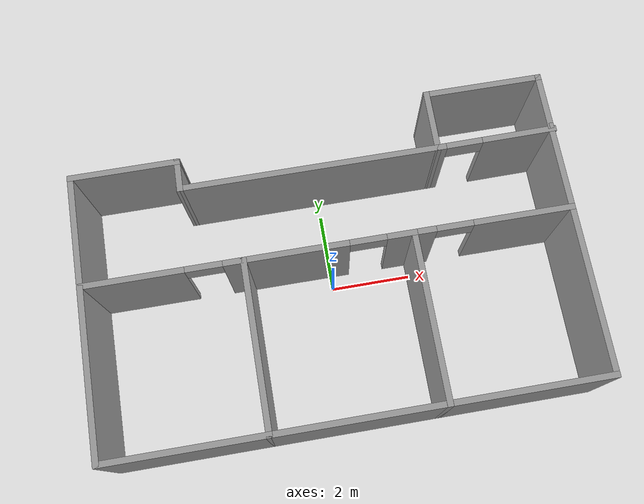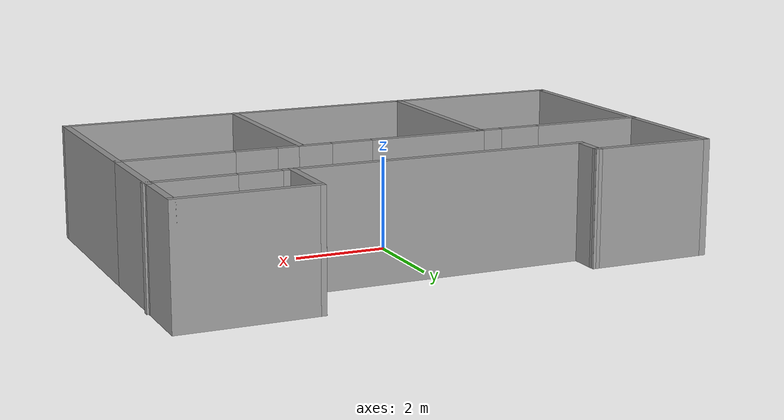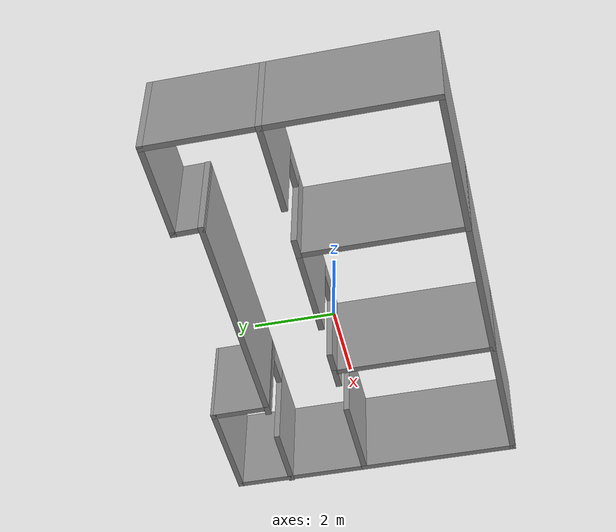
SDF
<?xml version='1.0'?>
<sdf version='1.7'>
  <model name='building'>
    <pose>-0.003614 0.114215 0 0 -0 0</pose>
    <link name='Wall_10'>
      <collision name='Wall_10_Collision'>
        <geometry>
          <box>
            <size>1.60423 0.15 2.5</size>
          </box>
        </geometry>
        <pose>0 0 1.25 0 -0 0</pose>
      </collision>
      <visual name='Wall_10_Visual'>
        <pose>0 0 1.25 0 -0 0</pose>
        <geometry>
          <box>
            <size>1.60423 0.15 2.5</size>
          </box>
        </geometry>
        <material>
          <script>
            <uri>file://media/materials/scripts/gazebo.material</uri>
            <name>Gazebo/Grey</name>
          </script>
          <ambient>1 1 1 1</ambient>
        </material>
        <meta>
          <layer>0</layer>
        </meta>
      </visual>
      <pose>3.02268 3.07278 0 0 -0 1.56289</pose>
    </link>
    <link name='Wall_11'>
      <collision name='Wall_11_Collision'>
        <geometry>
          <box>
            <size>3 0.15 2.5</size>
          </box>
        </geometry>
        <pose>0 0 1.25 0 -0 0</pose>
      </collision>
      <visual name='Wall_11_Visual'>
        <pose>0 0 1.25 0 -0 0</pose>
        <geometry>
          <box>
            <size>3 0.15 2.5</size>
          </box>
        </geometry>
        <material>
          <script>
            <uri>file://media/materials/scripts/gazebo.material</uri>
            <name>Gazebo/Grey</name>
          </script>
          <ambient>1 1 1 1</ambient>
        </material>
        <meta>
          <layer>0</layer>
        </meta>
      </visual>
      <pose>4.45343 3.79953 0 0 -0 0</pose>
    </link>
    <link name='Wall_12'>
      <collision name='Wall_12_Collision'>
        <geometry>
          <box>
            <size>1.5 0.15 2.5</size>
          </box>
        </geometry>
        <pose>0 0 1.25 0 -0 0</pose>
      </collision>
      <visual name='Wall_12_Visual'>
        <pose>0 0 1.25 0 -0 0</pose>
        <geometry>
          <box>
            <size>1.5 0.15 2.5</size>
          </box>
        </geometry>
        <material>
          <script>
            <uri>file://media/materials/scripts/gazebo.material</uri>
            <name>Gazebo/Grey</name>
          </script>
          <ambient>1 1 1 1</ambient>
        </material>
        <meta>
          <layer>0</layer>
        </meta>
      </visual>
      <pose>5.87843 3.12453 0 0 -0 -1.5708</pose>
    </link>
    <link name='Wall_15'>
      <collision name='Wall_15_Collision'>
        <geometry>
          <box>
            <size>4.25 0.15 2.5</size>
          </box>
        </geometry>
        <pose>0 0 1.25 0 -0 0</pose>
      </collision>
      <visual name='Wall_15_Visual'>
        <pose>0 0 1.25 0 -0 0</pose>
        <geometry>
          <box>
            <size>4.25 0.15 2.5</size>
          </box>
        </geometry>
        <material>
          <script>
            <uri>file://media/materials/scripts/gazebo.material</uri>
            <name>Gazebo/Grey</name>
          </script>
          <ambient>1 1 1 1</ambient>
        </material>
        <meta>
          <layer>0</layer>
        </meta>
      </visual>
      <pose>-0.021572 -3.80047 0 0 -0 0</pose>
    </link>
    <link name='Wall_16'>
      <collision name='Wall_16_Collision'>
        <geometry>
          <box>
            <size>4.25 0.15 2.5</size>
          </box>
        </geometry>
        <pose>0 0 1.25 0 -0 0</pose>
      </collision>
      <visual name='Wall_16_Visual'>
        <pose>0 0 1.25 0 -0 0</pose>
        <geometry>
          <box>
            <size>4.25 0.15 2.5</size>
          </box>
        </geometry>
        <material>
          <script>
            <uri>file://media/materials/scripts/gazebo.material</uri>
            <name>Gazebo/Grey</name>
          </script>
          <ambient>1 1 1 1</ambient>
        </material>
        <meta>
          <layer>0</layer>
        </meta>
      </visual>
      <pose>2.02843 -1.75047 0 0 -0 1.5708</pose>
    </link>
    <link name='Wall_17'>
      <pose>3.95343 0.299534 0 0 -0 0</pose>
      <visual name='Wall_17_Visual_0'>
        <pose>-1.69368 0 1.25 0 -0 0</pose>
        <geometry>
          <box>
            <size>0.612639 0.15 2.5</size>
          </box>
        </geometry>
        <material>
          <script>
            <uri>file://media/materials/scripts/gazebo.material</uri>
            <name>Gazebo/Grey</name>
          </script>
          <ambient>1 1 1 1</ambient>
        </material>
        <meta>
          <layer>0</layer>
        </meta>
      </visual>
      <collision name='Wall_17_Collision_0'>
        <geometry>
          <box>
            <size>0.612639 0.15 2.5</size>
          </box>
        </geometry>
        <pose>-1.69368 0 1.25 0 -0 0</pose>
      </collision>
      <visual name='Wall_17_Visual_1'>
        <pose>0.75632 0 1.25 0 -0 0</pose>
        <geometry>
          <box>
            <size>2.48736 0.15 2.5</size>
          </box>
        </geometry>
        <material>
          <script>
            <uri>file://media/materials/scripts/gazebo.material</uri>
            <name>Gazebo/Grey</name>
          </script>
          <ambient>1 1 1 1</ambient>
        </material>
        <meta>
          <layer>0</layer>
        </meta>
      </visual>
      <collision name='Wall_17_Collision_1'>
        <geometry>
          <box>
            <size>2.48736 0.15 2.5</size>
          </box>
        </geometry>
        <pose>0.75632 0 1.25 0 -0 0</pose>
      </collision>
      <visual name='Wall_17_Visual_2'>
        <pose>-0.937361 0 2.25 0 -0 0</pose>
        <geometry>
          <box>
            <size>0.9 0.15 0.5</size>
          </box>
        </geometry>
        <material>
          <script>
            <uri>file://media/materials/scripts/gazebo.material</uri>
            <name>Gazebo/Grey</name>
          </script>
          <ambient>1 1 1 1</ambient>
        </material>
        <meta>
          <layer>0</layer>
        </meta>
      </visual>
      <collision name='Wall_17_Collision_2'>
        <geometry>
          <box>
            <size>0.9 0.15 0.5</size>
          </box>
        </geometry>
        <pose>-0.937361 0 2.25 0 -0 0</pose>
      </collision>
    </link>
    <link name='Wall_18'>
      <collision name='Wall_18_Collision'>
        <geometry>
          <box>
            <size>4.25 0.15 2.5</size>
          </box>
        </geometry>
        <pose>0 0 1.25 0 -0 0</pose>
      </collision>
      <visual name='Wall_18_Visual'>
        <pose>0 0 1.25 0 -0 0</pose>
        <geometry>
          <box>
            <size>4.25 0.15 2.5</size>
          </box>
        </geometry>
        <material>
          <script>
            <uri>file://media/materials/scripts/gazebo.material</uri>
            <name>Gazebo/Grey</name>
          </script>
          <ambient>1 1 1 1</ambient>
        </material>
        <meta>
          <layer>0</layer>
        </meta>
      </visual>
      <pose>5.87843 -1.75047 0 0 -0 -1.5708</pose>
    </link>
    <link name='Wall_19'>
      <collision name='Wall_19_Collision'>
        <geometry>
          <box>
            <size>4 0.15 2.5</size>
          </box>
        </geometry>
        <pose>0 0 1.25 0 -0 0</pose>
      </collision>
      <visual name='Wall_19_Visual'>
        <pose>0 0 1.25 0 -0 0</pose>
        <geometry>
          <box>
            <size>4 0.15 2.5</size>
          </box>
        </geometry>
        <material>
          <script>
            <uri>file://media/materials/scripts/gazebo.material</uri>
            <name>Gazebo/Grey</name>
          </script>
          <ambient>1 1 1 1</ambient>
        </material>
        <meta>
          <layer>0</layer>
        </meta>
      </visual>
      <pose>3.95343 -3.80047 0 0 -0 3.14159</pose>
    </link>
    <link name='Wall_2'>
      <collision name='Wall_2_Collision'>
        <geometry>
          <box>
            <size>7 0.15 2.5</size>
          </box>
        </geometry>
        <pose>0 0 1.25 0 -0 0</pose>
      </collision>
      <visual name='Wall_2_Visual'>
        <pose>0 0 1.25 0 -0 0</pose>
        <geometry>
          <box>
            <size>7 0.15 2.5</size>
          </box>
        </geometry>
        <material>
          <script>
            <uri>file://media/materials/scripts/gazebo.material</uri>
            <name>Gazebo/Grey</name>
          </script>
          <ambient>1 1 1 1</ambient>
        </material>
        <meta>
          <layer>0</layer>
        </meta>
      </visual>
      <pose>-5.92157 -0.375466 0 0 -0 -1.5708</pose>
    </link>
    <link name='Wall_21'>
      <pose>-0.021572 0.299534 0 0 -0 0</pose>
      <visual name='Wall_21_Visual_0'>
        <pose>-0.818084 0 1.25 0 -0 0</pose>
        <geometry>
          <box>
            <size>2.61383 0.15 2.5</size>
          </box>
        </geometry>
        <material>
          <script>
            <uri>file://media/materials/scripts/gazebo.material</uri>
            <name>Gazebo/Grey</name>
          </script>
          <ambient>1 1 1 1</ambient>
        </material>
        <meta>
          <layer>0</layer>
        </meta>
      </visual>
      <collision name='Wall_21_Collision_0'>
        <geometry>
          <box>
            <size>2.61383 0.15 2.5</size>
          </box>
        </geometry>
        <pose>-0.818084 0 1.25 0 -0 0</pose>
      </collision>
      <visual name='Wall_21_Visual_1'>
        <pose>1.75692 0 1.25 0 -0 0</pose>
        <geometry>
          <box>
            <size>0.736168 0.15 2.5</size>
          </box>
        </geometry>
        <material>
          <script>
            <uri>file://media/materials/scripts/gazebo.material</uri>
            <name>Gazebo/Grey</name>
          </script>
          <ambient>1 1 1 1</ambient>
        </material>
        <meta>
          <layer>0</layer>
        </meta>
      </visual>
      <collision name='Wall_21_Collision_1'>
        <geometry>
          <box>
            <size>0.736168 0.15 2.5</size>
          </box>
        </geometry>
        <pose>1.75692 0 1.25 0 -0 0</pose>
      </collision>
      <visual name='Wall_21_Visual_2'>
        <pose>0.938832 0 2.25 0 -0 0</pose>
        <geometry>
          <box>
            <size>0.9 0.15 0.5</size>
          </box>
        </geometry>
        <material>
          <script>
            <uri>file://media/materials/scripts/gazebo.material</uri>
            <name>Gazebo/Grey</name>
          </script>
          <ambient>1 1 1 1</ambient>
        </material>
        <meta>
          <layer>0</layer>
        </meta>
      </visual>
      <collision name='Wall_21_Collision_2'>
        <geometry>
          <box>
            <size>0.9 0.15 0.5</size>
          </box>
        </geometry>
        <pose>0.938832 0 2.25 0 -0 0</pose>
      </collision>
    </link>
    <link name='Wall_23'>
      <collision name='Wall_23_Collision'>
        <geometry>
          <box>
            <size>2.3 0.15 2.5</size>
          </box>
        </geometry>
        <pose>0 0 1.25 0 -0 0</pose>
      </collision>
      <visual name='Wall_23_Visual'>
        <pose>0 0 1.25 0 -0 0</pose>
        <geometry>
          <box>
            <size>2.3 0.15 2.5</size>
          </box>
        </geometry>
        <material>
          <script>
            <uri>file://media/materials/scripts/gazebo.material</uri>
            <name>Gazebo/Grey</name>
          </script>
          <ambient>1 1 1 1</ambient>
        </material>
        <meta>
          <layer>0</layer>
        </meta>
      </visual>
      <pose>5.87843 1.37453 0 0 -0 -1.5708</pose>
    </link>
    <link name='Wall_28'>
      <pose>4.46893 2.35833 0 0 -0 0.00847</pose>
      <visual name='Wall_28_Visual_0'>
        <pose>-1.38024 0 1.25 0 -0 0</pose>
        <geometry>
          <box>
            <size>0.293638 0.15 2.5</size>
          </box>
        </geometry>
        <material>
          <script>
            <uri>file://media/materials/scripts/gazebo.material</uri>
            <name>Gazebo/Grey</name>
          </script>
          <ambient>1 1 1 1</ambient>
        </material>
        <meta>
          <layer>0</layer>
        </meta>
      </visual>
      <collision name='Wall_28_Collision_0'>
        <geometry>
          <box>
            <size>0.293638 0.15 2.5</size>
          </box>
        </geometry>
        <pose>-1.38024 0 1.25 0 -0 0</pose>
      </collision>
      <visual name='Wall_28_Visual_1'>
        <pose>0.596819 0 1.25 0 -0 0</pose>
        <geometry>
          <box>
            <size>1.86048 0.15 2.5</size>
          </box>
        </geometry>
        <material>
          <script>
            <uri>file://media/materials/scripts/gazebo.material</uri>
            <name>Gazebo/Grey</name>
          </script>
          <ambient>1 1 1 1</ambient>
        </material>
        <meta>
          <layer>0</layer>
        </meta>
      </visual>
      <collision name='Wall_28_Collision_1'>
        <geometry>
          <box>
            <size>1.86048 0.15 2.5</size>
          </box>
        </geometry>
        <pose>0.596819 0 1.25 0 -0 0</pose>
      </collision>
      <visual name='Wall_28_Visual_2'>
        <pose>-0.78342 0 2.25 0 -0 0</pose>
        <geometry>
          <box>
            <size>0.9 0.15 0.5</size>
          </box>
        </geometry>
        <material>
          <script>
            <uri>file://media/materials/scripts/gazebo.material</uri>
            <name>Gazebo/Grey</name>
          </script>
          <ambient>1 1 1 1</ambient>
        </material>
        <meta>
          <layer>0</layer>
        </meta>
      </visual>
      <collision name='Wall_28_Collision_2'>
        <geometry>
          <box>
            <size>0.9 0.15 0.5</size>
          </box>
        </geometry>
        <pose>-0.78342 0 2.25 0 -0 0</pose>
      </collision>
    </link>
    <link name='Wall_3'>
      <collision name='Wall_3_Collision'>
        <geometry>
          <box>
            <size>4 0.15 2.5</size>
          </box>
        </geometry>
        <pose>0 0 1.25 0 -0 0</pose>
      </collision>
      <visual name='Wall_3_Visual'>
        <pose>0 0 1.25 0 -0 0</pose>
        <geometry>
          <box>
            <size>4 0.15 2.5</size>
          </box>
        </geometry>
        <material>
          <script>
            <uri>file://media/materials/scripts/gazebo.material</uri>
            <name>Gazebo/Grey</name>
          </script>
          <ambient>1 1 1 1</ambient>
        </material>
        <meta>
          <layer>0</layer>
        </meta>
      </visual>
      <pose>-3.99657 -3.80047 0 0 -0 0</pose>
    </link>
    <link name='Wall_4'>
      <collision name='Wall_4_Collision'>
        <geometry>
          <box>
            <size>4.25 0.15 2.5</size>
          </box>
        </geometry>
        <pose>0 0 1.25 0 -0 0</pose>
      </collision>
      <visual name='Wall_4_Visual'>
        <pose>0 0 1.25 0 -0 0</pose>
        <geometry>
          <box>
            <size>4.25 0.15 2.5</size>
          </box>
        </geometry>
        <material>
          <script>
            <uri>file://media/materials/scripts/gazebo.material</uri>
            <name>Gazebo/Grey</name>
          </script>
          <ambient>1 1 1 1</ambient>
        </material>
        <meta>
          <layer>0</layer>
        </meta>
      </visual>
      <pose>-2.07157 -1.75047 0 0 -0 1.5708</pose>
    </link>
    <link name='Wall_5'>
      <pose>-3.99657 0.299534 0 0 -0 3.14159</pose>
      <visual name='Wall_5_Visual_0'>
        <pose>-1.71238 0 1.25 0 -0 0</pose>
        <geometry>
          <box>
            <size>0.575234 0.15 2.5</size>
          </box>
        </geometry>
        <material>
          <script>
            <uri>file://media/materials/scripts/gazebo.material</uri>
            <name>Gazebo/Grey</name>
          </script>
          <ambient>1 1 1 1</ambient>
        </material>
        <meta>
          <layer>0</layer>
        </meta>
      </visual>
      <collision name='Wall_5_Collision_0'>
        <geometry>
          <box>
            <size>0.575234 0.15 2.5</size>
          </box>
        </geometry>
        <pose>-1.71238 0 1.25 0 -0 0</pose>
      </collision>
      <visual name='Wall_5_Visual_1'>
        <pose>0.737617 0 1.25 0 -0 0</pose>
        <geometry>
          <box>
            <size>2.52477 0.15 2.5</size>
          </box>
        </geometry>
        <material>
          <script>
            <uri>file://media/materials/scripts/gazebo.material</uri>
            <name>Gazebo/Grey</name>
          </script>
          <ambient>1 1 1 1</ambient>
        </material>
        <meta>
          <layer>0</layer>
        </meta>
      </visual>
      <collision name='Wall_5_Collision_1'>
        <geometry>
          <box>
            <size>2.52477 0.15 2.5</size>
          </box>
        </geometry>
        <pose>0.737617 0 1.25 0 -0 0</pose>
      </collision>
      <visual name='Wall_5_Visual_2'>
        <pose>-0.974766 0 2.25 0 -0 0</pose>
        <geometry>
          <box>
            <size>0.9 0.15 0.5</size>
          </box>
        </geometry>
        <material>
          <script>
            <uri>file://media/materials/scripts/gazebo.material</uri>
            <name>Gazebo/Grey</name>
          </script>
          <ambient>1 1 1 1</ambient>
        </material>
        <meta>
          <layer>0</layer>
        </meta>
      </visual>
      <collision name='Wall_5_Collision_2'>
        <geometry>
          <box>
            <size>0.9 0.15 0.5</size>
          </box>
        </geometry>
        <pose>-0.974766 0 2.25 0 -0 0</pose>
      </collision>
    </link>
    <link name='Wall_7'>
      <collision name='Wall_7_Collision'>
        <geometry>
          <box>
            <size>2.75 0.15 2.5</size>
          </box>
        </geometry>
        <pose>0 0 1.25 0 -0 0</pose>
      </collision>
      <visual name='Wall_7_Visual'>
        <pose>0 0 1.25 0 -0 0</pose>
        <geometry>
          <box>
            <size>2.75 0.15 2.5</size>
          </box>
        </geometry>
        <material>
          <script>
            <uri>file://media/materials/scripts/gazebo.material</uri>
            <name>Gazebo/Grey</name>
          </script>
          <ambient>1 1 1 1</ambient>
        </material>
        <meta>
          <layer>0</layer>
        </meta>
      </visual>
      <pose>-4.62157 3.04953 0 0 -0 0</pose>
    </link>
    <link name='Wall_8'>
      <collision name='Wall_8_Collision'>
        <geometry>
          <box>
            <size>0.853876 0.15 2.5</size>
          </box>
        </geometry>
        <pose>0 0 1.25 0 -0 0</pose>
      </collision>
      <visual name='Wall_8_Visual'>
        <pose>0 0 1.25 0 -0 0</pose>
        <geometry>
          <box>
            <size>0.853876 0.15 2.5</size>
          </box>
        </geometry>
        <material>
          <script>
            <uri>file://media/materials/scripts/gazebo.material</uri>
            <name>Gazebo/Grey</name>
          </script>
          <ambient>1 1 1 1</ambient>
        </material>
        <meta>
          <layer>0</layer>
        </meta>
      </visual>
      <pose>-3.32732 2.69778 0 0 -0 -1.58714</pose>
    </link>
    <link name='Wall_9'>
      <collision name='Wall_9_Collision'>
        <geometry>
          <box>
            <size>6.5 0.15 2.5</size>
          </box>
        </geometry>
        <pose>0 0 1.25 0 -0 0</pose>
      </collision>
      <visual name='Wall_9_Visual'>
        <pose>0 0 1.25 0 -0 0</pose>
        <geometry>
          <box>
            <size>6.5 0.15 2.5</size>
          </box>
        </geometry>
        <material>
          <script>
            <uri>file://media/materials/scripts/gazebo.material</uri>
            <name>Gazebo/Grey</name>
          </script>
          <ambient>1 1 1 1</ambient>
        </material>
        <meta>
          <layer>0</layer>
        </meta>
      </visual>
      <pose>-0.169572 2.34603 0 0 -0 0</pose>
    </link>
    <static>1</static>
  </model>
</sdf>
